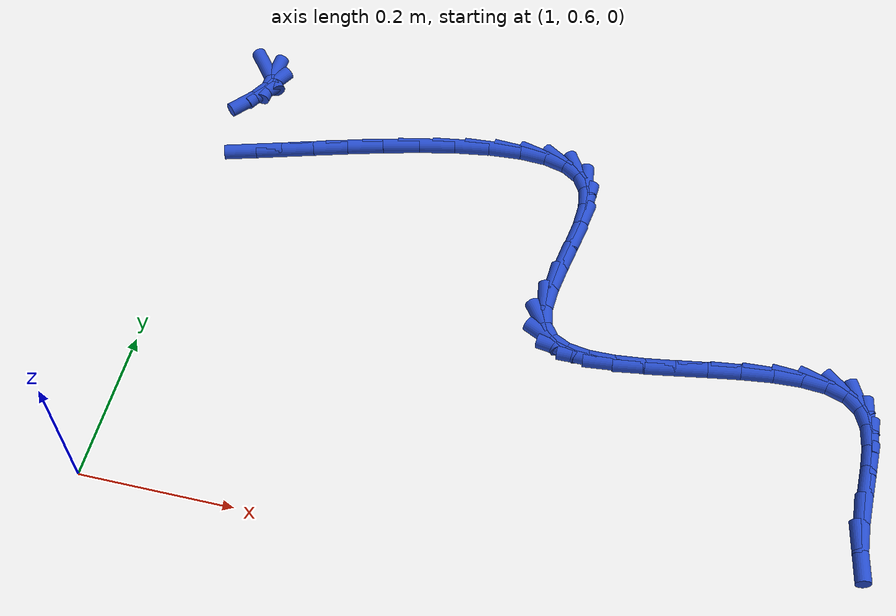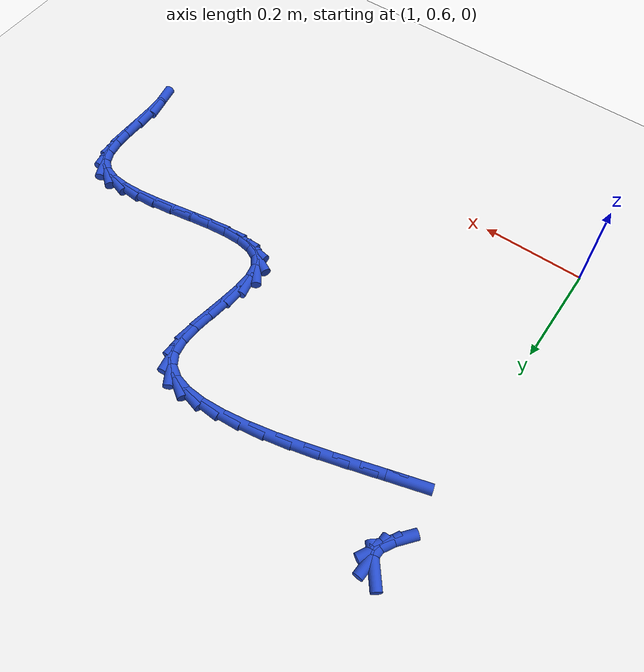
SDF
<sdf version="1.6">
 <world name="default">
  <model name="ground_plane">
   <static>1</static>
   <link name="link">
    <collision name="collision">
     <geometry><plane><normal>0 0 1</normal><size>100 100</size></plane></geometry>
     <surface><friction><ode><mu>100</mu><mu2>50</mu2></ode></friction></surface>
    </collision>
    <visual name="visual">
     <cast_shadows>0</cast_shadows>
     <geometry><plane><normal>0 0 1</normal><size>100 100</size></plane></geometry>
     <material>
      <script><uri>file://media/materials/scripts/gazebo.material</uri><name>Gazebo/WhiteGlow</name></script>
     </material>
    </visual>
   </link>
  </model>
  <model name="line">
   <link name="link_56">
    <pose>1.0265009572201764 1.2738270001502887 0.01 0 1.57 -0.895968242592329</pose>
    <collision name="collision">
     <geometry><cylinder><radius>0.01</radius><length>0.08</length></cylinder></geometry>
    </collision>
    <visual name="visual">
     <material>
      <script><name>Gazebo/Blue</name><uri>file://media/materials/scripts/gazebo.material</uri></script>
     </material>
     <geometry><cylinder><radius>0.01</radius><length>0.08</length></cylinder></geometry>
    </visual>
   </link>
   <link name="link_57">
    <pose>1.0361054310170168 1.2618235523623418 0.01 0 1.57 1.5096302738706202</pose>
    <collision name="collision">
     <geometry><cylinder><radius>0.01</radius><length>0.08</length></cylinder></geometry>
    </collision>
    <visual name="visual">
     <material>
      <script><name>Gazebo/Blue</name><uri>file://media/materials/scripts/gazebo.material</uri></script>
     </material>
     <geometry><cylinder><radius>0.01</radius><length>0.08</length></cylinder></geometry>
    </visual>
   </link>
   <link name="link_58">
    <pose>1.03505739603986 1.2447106670040835 0.01 0 1.57 1.0516517662364486</pose>
    <collision name="collision">
     <geometry><cylinder><radius>0.01</radius><length>0.08</length></cylinder></geometry>
    </collision>
    <visual name="visual">
     <material>
      <script><name>Gazebo/Blue</name><uri>file://media/materials/scripts/gazebo.material</uri></script>
     </material>
     <geometry><cylinder><radius>0.01</radius><length>0.08</length></cylinder></geometry>
    </visual>
   </link>
   <link name="link_59">
    <pose>1.0222752182474473 1.2223417751878534 0.01 0 1.57 0.8737442590883272</pose>
    <collision name="collision">
     <geometry><cylinder><radius>0.01</radius><length>0.08</length></cylinder></geometry>
    </collision>
    <visual name="visual">
     <material>
      <script><name>Gazebo/Blue</name><uri>file://media/materials/scripts/gazebo.material</uri></script>
     </material>
     <geometry><cylinder><radius>0.01</radius><length>0.08</length></cylinder></geometry>
    </visual>
   </link>
   <link name="link_69">
    <pose>1.0521531277193006 1.1277329936221654 0.01 0 1.57 0.2849789727118552</pose>
    <collision name="collision">
     <geometry><cylinder><radius>0.01</radius><length>0.08</length></cylinder></geometry>
    </collision>
    <visual name="visual">
     <material>
      <script><name>Gazebo/Blue</name><uri>file://media/materials/scripts/gazebo.material</uri></script>
     </material>
     <geometry><cylinder><radius>0.01</radius><length>0.08</length></cylinder></geometry>
    </visual>
   </link>
   <link name="link_70">
    <pose>1.0945424212595523 1.1401510546217255 0.01 0 1.57 0.28832786305315156</pose>
    <collision name="collision">
     <geometry><cylinder><radius>0.01</radius><length>0.08</length></cylinder></geometry>
    </collision>
    <visual name="visual">
     <material>
      <script><name>Gazebo/Blue</name><uri>file://media/materials/scripts/gazebo.material</uri></script>
     </material>
     <geometry><cylinder><radius>0.01</radius><length>0.08</length></cylinder></geometry>
    </visual>
   </link>
   <link name="link_71">
    <pose>1.1403516855559714 1.1537377458071698 0.01 0 1.57 0.28179691725811556</pose>
    <collision name="collision">
     <geometry><cylinder><radius>0.01</radius><length>0.08</length></cylinder></geometry>
    </collision>
    <visual name="visual">
     <material>
      <script><name>Gazebo/Blue</name><uri>file://media/materials/scripts/gazebo.material</uri></script>
     </material>
     <geometry><cylinder><radius>0.01</radius><length>0.08</length></cylinder></geometry>
    </visual>
   </link>
   <link name="link_72">
    <pose>1.1883705810066232 1.1676392560617692 0.01 0 1.57 0.2661366302641057</pose>
    <collision name="collision">
     <geometry><cylinder><radius>0.01</radius><length>0.08</length></cylinder></geometry>
    </collision>
    <visual name="visual">
     <material>
      <script><name>Gazebo/Blue</name><uri>file://media/materials/scripts/gazebo.material</uri></script>
     </material>
     <geometry><cylinder><radius>0.01</radius><length>0.08</length></cylinder></geometry>
    </visual>
   </link>
   <link name="link_73">
    <pose>1.237388768009573 1.1810017742687935 0.01 0 1.57 0.24049854575931093</pose>
    <collision name="collision">
     <geometry><cylinder><radius>0.01</radius><length>0.08</length></cylinder></geometry>
    </collision>
    <visual name="visual">
     <material>
      <script><name>Gazebo/Blue</name><uri>file://media/materials/scripts/gazebo.material</uri></script>
     </material>
     <geometry><cylinder><radius>0.01</radius><length>0.08</length></cylinder></geometry>
    </visual>
   </link>
   <link name="link_74">
    <pose>1.2861959069628872 1.1929714893115142 0.01 0 1.57 0.2023813010103762</pose>
    <collision name="collision">
     <geometry><cylinder><radius>0.01</radius><length>0.08</length></cylinder></geometry>
    </collision>
    <visual name="visual">
     <material>
      <script><name>Gazebo/Blue</name><uri>file://media/materials/scripts/gazebo.material</uri></script>
     </material>
     <geometry><cylinder><radius>0.01</radius><length>0.08</length></cylinder></geometry>
    </visual>
   </link>
   <link name="link_75">
    <pose>1.33358165826463 1.2026945900732016 0.01 0 1.57 0.1469132653189109</pose>
    <collision name="collision">
     <geometry><cylinder><radius>0.01</radius><length>0.08</length></cylinder></geometry>
    </collision>
    <visual name="visual">
     <material>
      <script><name>Gazebo/Blue</name><uri>file://media/materials/scripts/gazebo.material</uri></script>
     </material>
     <geometry><cylinder><radius>0.01</radius><length>0.08</length></cylinder></geometry>
    </visual>
   </link>
   <link name="link_76">
    <pose>1.3783356823128683 1.2093172654371265 0.01 0 1.57 0.06513167962352281</pose>
    <collision name="collision">
     <geometry><cylinder><radius>0.01</radius><length>0.08</length></cylinder></geometry>
    </collision>
    <visual name="visual">
     <material>
      <script><name>Gazebo/Blue</name><uri>file://media/materials/scripts/gazebo.material</uri></script>
     </material>
     <geometry><cylinder><radius>0.01</radius><length>0.08</length></cylinder></geometry>
    </visual>
   </link>
   <link name="link_77">
    <pose>1.4192476395056661 1.211985704286559 0.01 0 1.57 -0.05959570302389738</pose>
    <collision name="collision">
     <geometry><cylinder><radius>0.01</radius><length>0.08</length></cylinder></geometry>
    </collision>
    <visual name="visual">
     <material>
      <script><name>Gazebo/Blue</name><uri>file://media/materials/scripts/gazebo.material</uri></script>
     </material>
     <geometry><cylinder><radius>0.01</radius><length>0.08</length></cylinder></geometry>
    </visual>
   </link>
   <link name="link_78">
    <pose>1.45510719024109 1.2098460955047705 0.01 0 1.57 -0.25772923761039124</pose>
    <collision name="collision">
     <geometry><cylinder><radius>0.01</radius><length>0.08</length></cylinder></geometry>
    </collision>
    <visual name="visual">
     <material>
      <script><name>Gazebo/Blue</name><uri>file://media/materials/scripts/gazebo.material</uri></script>
     </material>
     <geometry><cylinder><radius>0.01</radius><length>0.08</length></cylinder></geometry>
    </visual>
   </link>
   <link name="link_79">
    <pose>1.4847039949172043 1.202044627975031 0.01 0 1.57 -0.5743618523126905</pose>
    <collision name="collision">
     <geometry><cylinder><radius>0.01</radius><length>0.08</length></cylinder></geometry>
    </collision>
    <visual name="visual">
     <material>
      <script><name>Gazebo/Blue</name><uri>file://media/materials/scripts/gazebo.material</uri></script>
     </material>
     <geometry><cylinder><radius>0.01</radius><length>0.08</length></cylinder></geometry>
    </visual>
   </link>
   <link name="link_80">
    <pose>1.5068277139320752 1.1877274905806114 0.01 0 1.57 -1.0149696693725823</pose>
    <collision name="collision">
     <geometry><cylinder><radius>0.01</radius><length>0.08</length></cylinder></geometry>
    </collision>
    <visual name="visual">
     <material>
      <script><name>Gazebo/Blue</name><uri>file://media/materials/scripts/gazebo.material</uri></script>
     </material>
     <geometry><cylinder><radius>0.01</radius><length>0.08</length></cylinder></geometry>
    </visual>
   </link>
   <link name="link_81">
    <pose>1.5202881023047141 1.1660574138541357 0.01 0 1.57 -1.4005337293153604</pose>
    <collision name="collision">
     <geometry><cylinder><radius>0.01</radius><length>0.08</length></cylinder></geometry>
    </collision>
    <visual name="visual">
     <material>
      <script><name>Gazebo/Blue</name><uri>file://media/materials/scripts/gazebo.material</uri></script>
     </material>
     <geometry><cylinder><radius>0.01</radius><length>0.08</length></cylinder></geometry>
    </visual>
   </link>
   <link name="link_82">
    <pose>1.525232579244535 1.1372982773396787 0.01 0 1.57 1.5332250288218687</pose>
    <collision name="collision">
     <geometry><cylinder><radius>0.01</radius><length>0.08</length></cylinder></geometry>
    </collision>
    <visual name="visual">
     <material>
      <script><name>Gazebo/Blue</name><uri>file://media/materials/scripts/gazebo.material</uri></script>
     </material>
     <geometry><cylinder><radius>0.01</radius><length>0.08</length></cylinder></geometry>
    </visual>
   </link>
   <link name="link_83">
    <pose>1.5239616225004422 1.1034863323763935 0.01 0 1.57 1.4355130489868508</pose>
    <collision name="collision">
     <geometry><cylinder><radius>0.01</radius><length>0.08</length></cylinder></geometry>
    </collision>
    <visual name="visual">
     <material>
      <script><name>Gazebo/Blue</name><uri>file://media/materials/scripts/gazebo.material</uri></script>
     </material>
     <geometry><cylinder><radius>0.01</radius><length>0.08</length></cylinder></geometry>
    </visual>
   </link>
   <link name="link_84">
    <pose>1.5189705553915855 1.0668182248244193 0.01 0 1.57 1.4057888394384377</pose>
    <collision name="collision">
     <geometry><cylinder><radius>0.01</radius><length>0.08</length></cylinder></geometry>
    </collision>
    <visual name="visual">
     <material>
      <script><name>Gazebo/Blue</name><uri>file://media/materials/scripts/gazebo.material</uri></script>
     </material>
     <geometry><cylinder><radius>0.01</radius><length>0.08</length></cylinder></geometry>
    </visual>
   </link>
   <link name="link_85">
    <pose>1.5127547012371125 1.029490600543895 0.01 0 1.57 1.4334916759753886</pose>
    <collision name="collision">
     <geometry><cylinder><radius>0.01</radius><length>0.08</length></cylinder></geometry>
    </collision>
    <visual name="visual">
     <material>
      <script><name>Gazebo/Blue</name><uri>file://media/materials/scripts/gazebo.material</uri></script>
     </material>
     <geometry><cylinder><radius>0.01</radius><length>0.08</length></cylinder></geometry>
    </visual>
   </link>
   <link name="link_86">
    <pose>1.5078093833561728 0.9937001053949601 0.01 0 1.57 1.5340200596708005</pose>
    <collision name="collision">
     <geometry><cylinder><radius>0.01</radius><length>0.08</length></cylinder></geometry>
    </collision>
    <visual name="visual">
     <material>
      <script><name>Gazebo/Blue</name><uri>file://media/materials/scripts/gazebo.material</uri></script>
     </material>
     <geometry><cylinder><radius>0.01</radius><length>0.08</length></cylinder></geometry>
    </visual>
   </link>
   <link name="link_87">
    <pose>1.5066299250679147 0.9616433852377536 0.01 0 1.57 -1.3786888994615107</pose>
    <collision name="collision">
     <geometry><cylinder><radius>0.01</radius><length>0.08</length></cylinder></geometry>
    </collision>
    <visual name="visual">
     <material>
      <script><name>Gazebo/Blue</name><uri>file://media/materials/scripts/gazebo.material</uri></script>
     </material>
     <geometry><cylinder><radius>0.01</radius><length>0.08</length></cylinder></geometry>
    </visual>
   </link>
   <link name="link_88">
    <pose>1.511711649691487 0.9355170859324147 0.01 0 1.57 -0.9343135543084192</pose>
    <collision name="collision">
     <geometry><cylinder><radius>0.01</radius><length>0.08</length></cylinder></geometry>
    </collision>
    <visual name="visual">
     <material>
      <script><name>Gazebo/Blue</name><uri>file://media/materials/scripts/gazebo.material</uri></script>
     </material>
     <geometry><cylinder><radius>0.01</radius><length>0.08</length></cylinder></geometry>
    </visual>
   </link>
   <link name="link_89">
    <pose>1.5252290314085417 0.9172278901082265 0.01 0 1.57 -0.46053661204711294</pose>
    <collision name="collision">
     <geometry><cylinder><radius>0.01</radius><length>0.08</length></cylinder></geometry>
    </collision>
    <visual name="visual">
     <material>
      <script><name>Gazebo/Blue</name><uri>file://media/materials/scripts/gazebo.material</uri></script>
     </material>
     <geometry><cylinder><radius>0.01</radius><length>0.08</length></cylinder></geometry>
    </visual>
   </link>
   <link name="link_90">
    <pose>1.5469100994249867 0.9064715375980801 0.01 0 1.57 -0.15846865918706166</pose>
    <collision name="collision">
     <geometry><cylinder><radius>0.01</radius><length>0.08</length></cylinder></geometry>
    </collision>
    <visual name="visual">
     <material>
      <script><name>Gazebo/Blue</name><uri>file://media/materials/scripts/gazebo.material</uri></script>
     </material>
     <geometry><cylinder><radius>0.01</radius><length>0.08</length></cylinder></geometry>
    </visual>
   </link>
   <link name="link_91">
    <pose>1.5753562584547012 0.901925596017797 0.01 0 1.57 0.009956915391739127</pose>
    <collision name="collision">
     <geometry><cylinder><radius>0.01</radius><length>0.08</length></cylinder></geometry>
    </collision>
    <visual name="visual">
     <material>
      <script><name>Gazebo/Blue</name><uri>file://media/materials/scripts/gazebo.material</uri></script>
     </material>
     <geometry><cylinder><radius>0.01</radius><length>0.08</length></cylinder></geometry>
    </visual>
   </link>
   <link name="link_92">
    <pose>1.6091629205756528 0.9022622172165129 0.01 0 1.57 0.1026849719746293</pose>
    <collision name="collision">
     <geometry><cylinder><radius>0.01</radius><length>0.08</length></cylinder></geometry>
    </collision>
    <visual name="visual">
     <material>
      <script><name>Gazebo/Blue</name><uri>file://media/materials/scripts/gazebo.material</uri></script>
     </material>
     <geometry><cylinder><radius>0.01</radius><length>0.08</length></cylinder></geometry>
    </visual>
   </link>
   <link name="link_93">
    <pose>1.646925497865808 0.9061535530433625 0.01 0 1.57 0.15061475316715675</pose>
    <collision name="collision">
     <geometry><cylinder><radius>0.01</radius><length>0.08</length></cylinder></geometry>
    </collision>
    <visual name="visual">
     <material>
      <script><name>Gazebo/Blue</name><uri>file://media/materials/scripts/gazebo.material</uri></script>
     </material>
     <geometry><cylinder><radius>0.01</radius><length>0.08</length></cylinder></geometry>
    </visual>
   </link>
   <link name="link_94">
    <pose>1.6872394024031363 0.9122717553474822 0.01 0 1.57 0.1676612892100617</pose>
    <collision name="collision">
     <geometry><cylinder><radius>0.01</radius><length>0.08</length></cylinder></geometry>
    </collision>
    <visual name="visual">
     <material>
      <script><name>Gazebo/Blue</name><uri>file://media/materials/scripts/gazebo.material</uri></script>
     </material>
     <geometry><cylinder><radius>0.01</radius><length>0.08</length></cylinder></geometry>
    </visual>
   </link>
   <link name="link_95">
    <pose>1.7287000462656046 0.9192889759780066 0.01 0 1.57 0.15855926762015235</pose>
    <collision name="collision">
     <geometry><cylinder><radius>0.01</radius><length>0.08</length></cylinder></geometry>
    </collision>
    <visual name="visual">
     <material>
      <script><name>Gazebo/Blue</name><uri>file://media/materials/scripts/gazebo.material</uri></script>
     </material>
     <geometry><cylinder><radius>0.01</radius><length>0.08</length></cylinder></geometry>
    </visual>
   </link>
   <link name="link_96">
    <pose>1.7699028415311806 0.9258773667840717 0.01 0 1.57 0.12159416255044393</pose>
    <collision name="collision">
     <geometry><cylinder><radius>0.01</radius><length>0.08</length></cylinder></geometry>
    </collision>
    <visual name="visual">
     <material>
      <script><name>Gazebo/Blue</name><uri>file://media/materials/scripts/gazebo.material</uri></script>
     </material>
     <geometry><cylinder><radius>0.01</radius><length>0.08</length></cylinder></geometry>
    </visual>
   </link>
   <link name="link_97">
    <pose>1.809443200277832 0.9307090796148125 0.01 0 1.57 0.04786653444796958</pose>
    <collision name="collision">
     <geometry><cylinder><radius>0.01</radius><length>0.08</length></cylinder></geometry>
    </collision>
    <visual name="visual">
     <material>
      <script><name>Gazebo/Blue</name><uri>file://media/materials/scripts/gazebo.material</uri></script>
     </material>
     <geometry><cylinder><radius>0.01</radius><length>0.08</length></cylinder></geometry>
    </visual>
   </link>
   <link name="link_98">
    <pose>1.8459165345835262 0.9324562663193643 0.01 0 1.57 -0.08309087816427514</pose>
    <collision name="collision">
     <geometry><cylinder><radius>0.01</radius><length>0.08</length></cylinder></geometry>
    </collision>
    <visual name="visual">
     <material>
      <script><name>Gazebo/Blue</name><uri>file://media/materials/scripts/gazebo.material</uri></script>
     </material>
     <geometry><cylinder><radius>0.01</radius><length>0.08</length></cylinder></geometry>
    </visual>
   </link>
   <link name="link_99">
    <pose>1.8779182565262318 0.9297910787468631 0.01 0 1.57 -0.31127305163139257</pose>
    <collision name="collision">
     <geometry><cylinder><radius>0.01</radius><length>0.08</length></cylinder></geometry>
    </collision>
    <visual name="visual">
     <material>
      <script><name>Gazebo/Blue</name><uri>file://media/materials/scripts/gazebo.material</uri></script>
     </material>
     <geometry><cylinder><radius>0.01</radius><length>0.08</length></cylinder></geometry>
    </visual>
   </link>
   <link name="link_100">
    <pose>1.9040437781839161 0.9213856687464442 0.01 0 1.57 -0.6873194638893416</pose>
    <collision name="collision">
     <geometry><cylinder><radius>0.01</radius><length>0.08</length></cylinder></geometry>
    </collision>
    <visual name="visual">
     <material>
      <script><name>Gazebo/Blue</name><uri>file://media/materials/scripts/gazebo.material</uri></script>
     </material>
     <geometry><cylinder><radius>0.01</radius><length>0.08</length></cylinder></geometry>
    </visual>
   </link>
   <link name="link_101">
    <pose>1.9228914295946509 0.9059147704879094 0.01 0 1.57 -1.1222367716267962</pose>
    <collision name="collision">
     <geometry><cylinder><radius>0.01</radius><length>0.08</length></cylinder></geometry>
    </collision>
    <visual name="visual">
     <material>
      <script><name>Gazebo/Blue</name><uri>file://media/materials/scripts/gazebo.material</uri></script>
     </material>
     <geometry><cylinder><radius>0.01</radius><length>0.08</length></cylinder></geometry>
    </visual>
   </link>
   <link name="link_102">
    <pose>1.9339824665312533 0.8828698840027213 0.01 0 1.57 -1.3979533230650976</pose>
    <collision name="collision">
     <geometry><cylinder><radius>0.01</radius><length>0.08</length></cylinder></geometry>
    </collision>
    <visual name="visual">
     <material>
      <script><name>Gazebo/Blue</name><uri>file://media/materials/scripts/gazebo.material</uri></script>
     </material>
     <geometry><cylinder><radius>0.01</radius><length>0.08</length></cylinder></geometry>
    </visual>
   </link>
   <link name="link_103">
    <pose>1.939071742107576 0.8537191863052985 0.01 0 1.57 -1.535772445442138</pose>
    <collision name="collision">
     <geometry><cylinder><radius>0.01</radius><length>0.08</length></cylinder></geometry>
    </collision>
    <visual name="visual">
     <material>
      <script><name>Gazebo/Blue</name><uri>file://media/materials/scripts/gazebo.material</uri></script>
     </material>
     <geometry><cylinder><radius>0.01</radius><length>0.08</length></cylinder></geometry>
    </visual>
   </link>
   <link name="link_104">
    <pose>1.940245353559884 0.8202239970551048 0.01 0 1.57 1.5526169208947866</pose>
    <collision name="collision">
     <geometry><cylinder><radius>0.01</radius><length>0.08</length></cylinder></geometry>
    </collision>
    <visual name="visual">
     <material>
      <script><name>Gazebo/Blue</name><uri>file://media/materials/scripts/gazebo.material</uri></script>
     </material>
     <geometry><cylinder><radius>0.01</radius><length>0.08</length></cylinder></geometry>
    </visual>
   </link>
   <link name="link_105">
    <pose>1.9395893981244414 0.7841456359116038 0.01 0 1.57 1.559972284021657</pose>
    <collision name="collision">
     <geometry><cylinder><radius>0.01</radius><length>0.08</length></cylinder></geometry>
    </collision>
    <visual name="visual">
     <material>
      <script><name>Gazebo/Blue</name><uri>file://media/materials/scripts/gazebo.material</uri></script>
     </material>
     <geometry><cylinder><radius>0.01</radius><length>0.08</length></cylinder></geometry>
    </visual>
   </link>
   <link name="link_106">
    <pose>1.9391899730375135 0.7472454225342571 0.01 0 1.57 -1.5168120618032719</pose>
    <collision name="collision">
     <geometry><cylinder><radius>0.01</radius><length>0.08</length></cylinder></geometry>
    </collision>
    <visual name="visual">
     <material>
      <script><name>Gazebo/Blue</name><uri>file://media/materials/scripts/gazebo.material</uri></script>
     </material>
     <geometry><cylinder><radius>0.01</radius><length>0.08</length></cylinder></geometry>
    </visual>
   </link>
   <link name="link_107">
    <pose>1.9411331755353647 0.7112846765825286 0.01 0 1.57 -1.381510326294183</pose>
    <collision name="collision">
     <geometry><cylinder><radius>0.01</radius><length>0.08</length></cylinder></geometry>
    </collision>
    <visual name="visual">
     <material>
      <script><name>Gazebo/Blue</name><uri>file://media/materials/scripts/gazebo.material</uri></script>
     </material>
     <geometry><cylinder><radius>0.01</radius><length>0.08</length></cylinder></geometry>
    </visual>
   </link>
  </model>
 </world>
</sdf>
